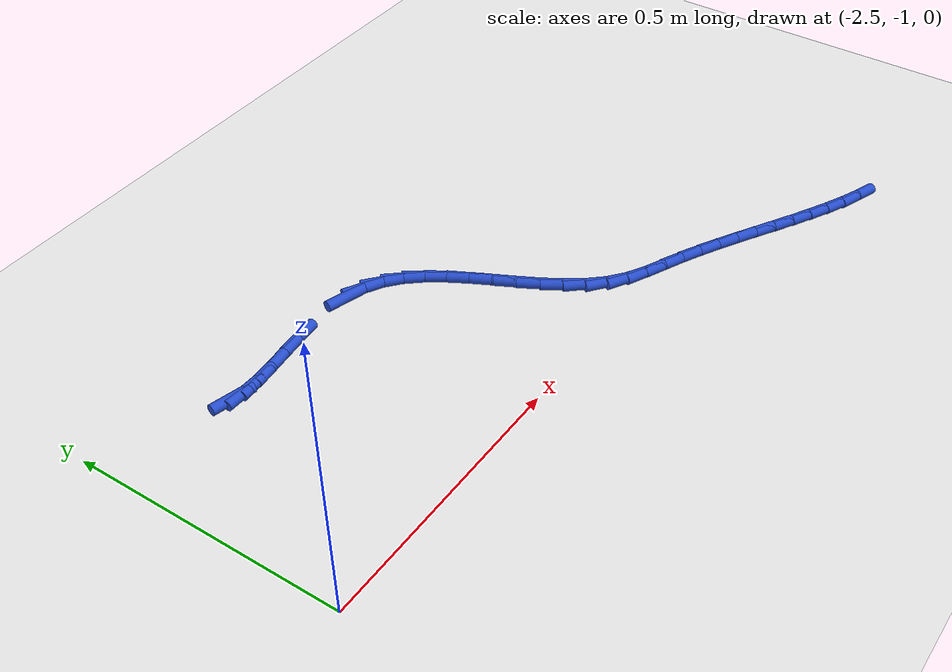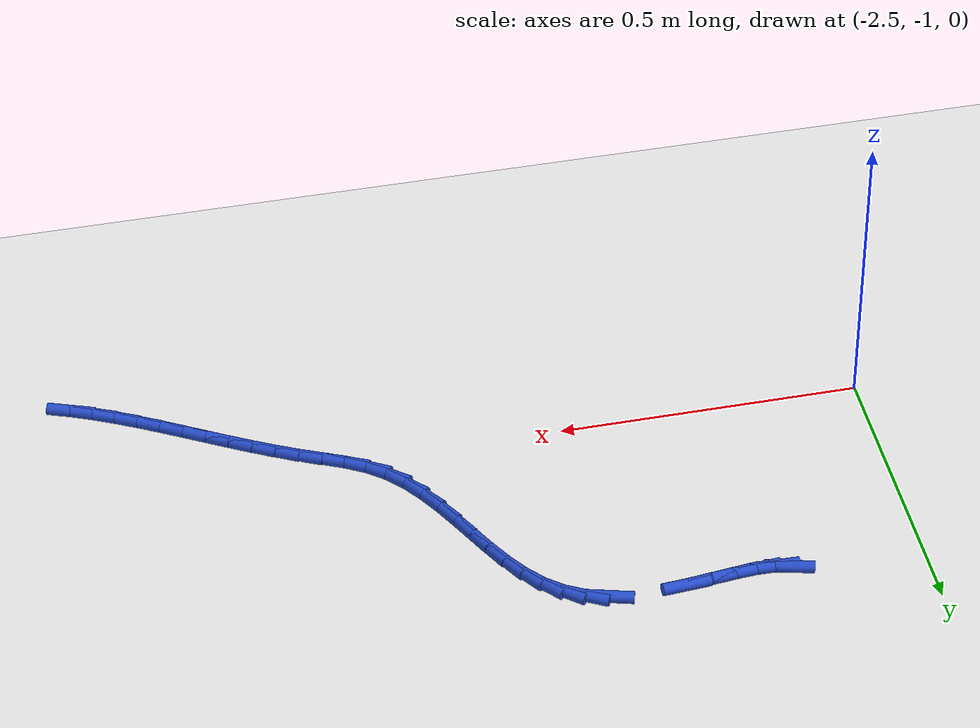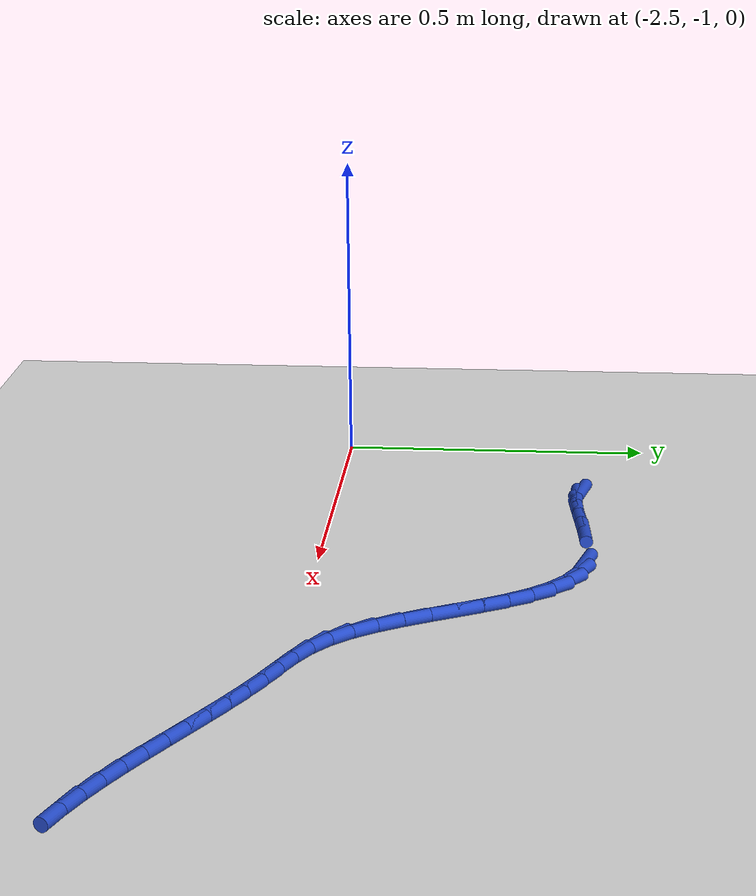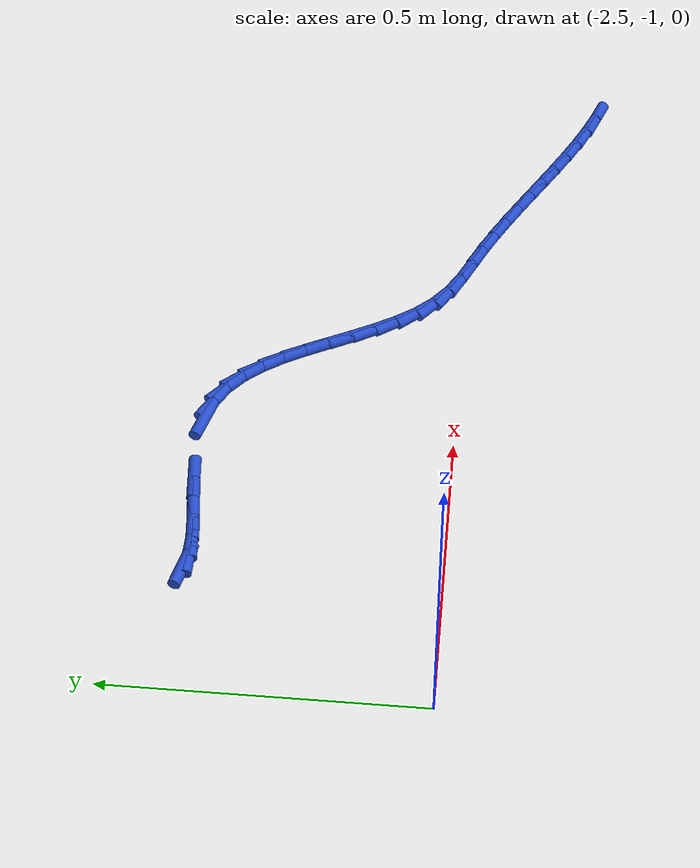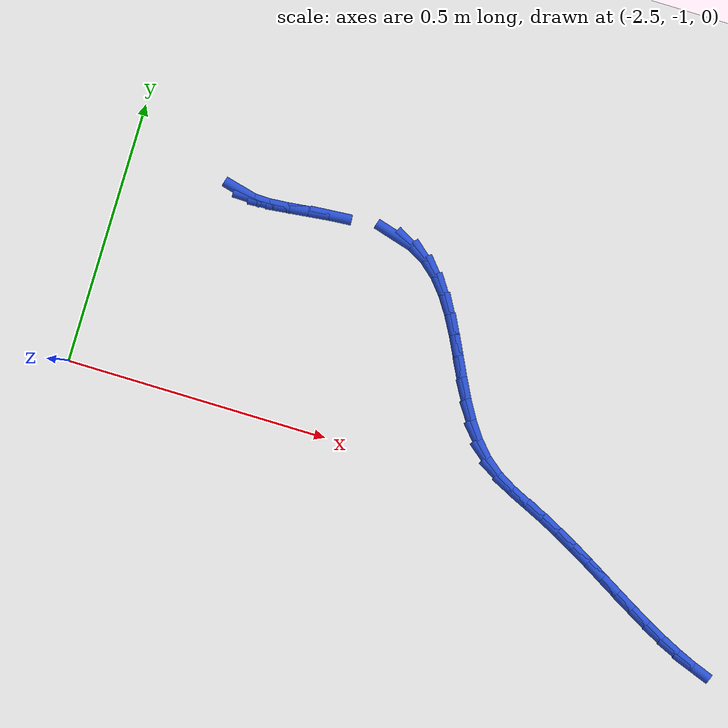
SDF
<sdf version="1.6">
 <world name="default">
  <model name="ground_plane">
   <static>1</static>
   <link name="link">
    <collision name="collision">
     <geometry><plane><normal>0 0 1</normal><size>100 100</size></plane></geometry>
     <surface><friction><ode><mu>100</mu><mu2>50</mu2></ode></friction></surface>
    </collision>
    <visual name="visual">
     <cast_shadows>0</cast_shadows>
     <geometry><plane><normal>0 0 1</normal><size>100 100</size></plane></geometry>
     <material>
      <script><uri>file://media/materials/scripts/gazebo.material</uri><name>Gazebo/WhiteGlow</name></script>
     </material>
    </visual>
   </link>
  </model>
  <model name="line">
   <link name="link_115">
    <pose>-2.2787938183123218 -0.6044094649087215 0.01 0 1.57 -0.24338673568815922</pose>
    <collision name="collision">
     <geometry><cylinder><radius>0.01</radius><length>0.08</length></cylinder></geometry>
    </collision>
    <visual name="visual">
     <material>
      <script><name>Gazebo/Blue</name><uri>file://media/materials/scripts/gazebo.material</uri></script>
     </material>
     <geometry><cylinder><radius>0.01</radius><length>0.08</length></cylinder></geometry>
    </visual>
   </link>
   <link name="link_116">
    <pose>-2.2562826425528004 -0.6099991980456921 0.01 0 1.57 -0.02326259080768685</pose>
    <collision name="collision">
     <geometry><cylinder><radius>0.01</radius><length>0.08</length></cylinder></geometry>
    </collision>
    <visual name="visual">
     <material>
      <script><name>Gazebo/Blue</name><uri>file://media/materials/scripts/gazebo.material</uri></script>
     </material>
     <geometry><cylinder><radius>0.01</radius><length>0.08</length></cylinder></geometry>
    </visual>
   </link>
   <link name="link_117">
    <pose>-2.226584211850876 -0.610690185133362 0.01 0 1.57 0.07625760759769655</pose>
    <collision name="collision">
     <geometry><cylinder><radius>0.01</radius><length>0.08</length></cylinder></geometry>
    </collision>
    <visual name="visual">
     <material>
      <script><name>Gazebo/Blue</name><uri>file://media/materials/scripts/gazebo.material</uri></script>
     </material>
     <geometry><cylinder><radius>0.01</radius><length>0.08</length></cylinder></geometry>
    </visual>
   </link>
   <link name="link_118">
    <pose>-2.1911887494341515 -0.6079857675526769 0.01 0 1.57 0.11358953289886145</pose>
    <collision name="collision">
     <geometry><cylinder><radius>0.01</radius><length>0.08</length></cylinder></geometry>
    </collision>
    <visual name="visual">
     <material>
      <script><name>Gazebo/Blue</name><uri>file://media/materials/scripts/gazebo.material</uri></script>
     </material>
     <geometry><cylinder><radius>0.01</radius><length>0.08</length></cylinder></geometry>
    </visual>
   </link>
   <link name="link_119">
    <pose>-2.1516911425369134 -0.6034798568504749 0.01 0 1.57 0.1117455510819127</pose>
    <collision name="collision">
     <geometry><cylinder><radius>0.01</radius><length>0.08</length></cylinder></geometry>
    </collision>
    <visual name="visual">
     <material>
      <script><name>Gazebo/Blue</name><uri>file://media/materials/scripts/gazebo.material</uri></script>
     </material>
     <geometry><cylinder><radius>0.01</radius><length>0.08</length></cylinder></geometry>
    </visual>
   </link>
   <link name="link_120">
    <pose>-2.1096862783934482 -0.5987663645735953 0.01 0 1.57 0.07737033232801367</pose>
    <collision name="collision">
     <geometry><cylinder><radius>0.01</radius><length>0.08</length></cylinder></geometry>
    </collision>
    <visual name="visual">
     <material>
      <script><name>Gazebo/Blue</name><uri>file://media/materials/scripts/gazebo.material</uri></script>
     </material>
     <geometry><cylinder><radius>0.01</radius><length>0.08</length></cylinder></geometry>
    </visual>
   </link>
   <link name="link_123">
    <pose>-1.9845770148285553 -0.5993195137632737 0.01 0 1.57 -0.28025862696537496</pose>
    <collision name="collision">
     <geometry><cylinder><radius>0.01</radius><length>0.08</length></cylinder></geometry>
    </collision>
    <visual name="visual">
     <material>
      <script><name>Gazebo/Blue</name><uri>file://media/materials/scripts/gazebo.material</uri></script>
     </material>
     <geometry><cylinder><radius>0.01</radius><length>0.08</length></cylinder></geometry>
    </visual>
   </link>
   <link name="link_124">
    <pose>-1.948485804827305 -0.6097078040506444 0.01 0 1.57 -0.5035521953981859</pose>
    <collision name="collision">
     <geometry><cylinder><radius>0.01</radius><length>0.08</length></cylinder></geometry>
    </collision>
    <visual name="visual">
     <material>
      <script><name>Gazebo/Blue</name><uri>file://media/materials/scripts/gazebo.material</uri></script>
     </material>
     <geometry><cylinder><radius>0.01</radius><length>0.08</length></cylinder></geometry>
    </visual>
   </link>
   <link name="link_125">
    <pose>-1.9171019605314763 -0.6269979112060378 0.01 0 1.57 -0.7065559334098402</pose>
    <collision name="collision">
     <geometry><cylinder><radius>0.01</radius><length>0.08</length></cylinder></geometry>
    </collision>
    <visual name="visual">
     <material>
      <script><name>Gazebo/Blue</name><uri>file://media/materials/scripts/gazebo.material</uri></script>
     </material>
     <geometry><cylinder><radius>0.01</radius><length>0.08</length></cylinder></geometry>
    </visual>
   </link>
   <link name="link_126">
    <pose>-1.8898159003946329 -0.6502881409416359 0.01 0 1.57 -0.8664180243405761</pose>
    <collision name="collision">
     <geometry><cylinder><radius>0.01</radius><length>0.08</length></cylinder></geometry>
    </collision>
    <visual name="visual">
     <material>
      <script><name>Gazebo/Blue</name><uri>file://media/materials/scripts/gazebo.material</uri></script>
     </material>
     <geometry><cylinder><radius>0.01</radius><length>0.08</length></cylinder></geometry>
    </visual>
   </link>
   <link name="link_127">
    <pose>-1.8658514595385454 -0.6784882155165839 0.01 0 1.57 -0.9812265476023809</pose>
    <collision name="collision">
     <geometry><cylinder><radius>0.01</radius><length>0.08</length></cylinder></geometry>
    </collision>
    <visual name="visual">
     <material>
      <script><name>Gazebo/Blue</name><uri>file://media/materials/scripts/gazebo.material</uri></script>
     </material>
     <geometry><cylinder><radius>0.01</radius><length>0.08</length></cylinder></geometry>
    </visual>
   </link>
   <link name="link_128">
    <pose>-1.8444324730849844 -0.7105078571900265 0.01 0 1.57 -1.0561488142827853</pose>
    <collision name="collision">
     <geometry><cylinder><radius>0.01</radius><length>0.08</length></cylinder></geometry>
    </collision>
    <visual name="visual">
     <material>
      <script><name>Gazebo/Blue</name><uri>file://media/materials/scripts/gazebo.material</uri></script>
     </material>
     <geometry><cylinder><radius>0.01</radius><length>0.08</length></cylinder></geometry>
    </visual>
   </link>
   <link name="link_129">
    <pose>-1.8247827761557207 -0.7452567882211086 0.01 0 1.57 -1.0970300972653164</pose>
    <collision name="collision">
     <geometry><cylinder><radius>0.01</radius><length>0.08</length></cylinder></geometry>
    </collision>
    <visual name="visual">
     <material>
      <script><name>Gazebo/Blue</name><uri>file://media/materials/scripts/gazebo.material</uri></script>
     </material>
     <geometry><cylinder><radius>0.01</radius><length>0.08</length></cylinder></geometry>
    </visual>
   </link>
   <link name="link_130">
    <pose>-1.8061262038725243 -0.7816447308689751 0.01 0 1.57 -1.107771073335499</pose>
    <collision name="collision">
     <geometry><cylinder><radius>0.01</radius><length>0.08</length></cylinder></geometry>
    </collision>
    <visual name="visual">
     <material>
      <script><name>Gazebo/Blue</name><uri>file://media/materials/scripts/gazebo.material</uri></script>
     </material>
     <geometry><cylinder><radius>0.01</radius><length>0.08</length></cylinder></geometry>
    </visual>
   </link>
   <link name="link_131">
    <pose>-1.7876865913571662 -0.8185814073927707 0.01 0 1.57 -1.0896919597943435</pose>
    <collision name="collision">
     <geometry><cylinder><radius>0.01</radius><length>0.08</length></cylinder></geometry>
    </collision>
    <visual name="visual">
     <material>
      <script><name>Gazebo/Blue</name><uri>file://media/materials/scripts/gazebo.material</uri></script>
     </material>
     <geometry><cylinder><radius>0.01</radius><length>0.08</length></cylinder></geometry>
    </visual>
   </link>
   <link name="link_132">
    <pose>-1.7686877737314168 -0.8549765400516406 0.01 0 1.57 -1.041529608802445</pose>
    <collision name="collision">
     <geometry><cylinder><radius>0.01</radius><length>0.08</length></cylinder></geometry>
    </collision>
    <visual name="visual">
     <material>
      <script><name>Gazebo/Blue</name><uri>file://media/materials/scripts/gazebo.material</uri></script>
     </material>
     <geometry><cylinder><radius>0.01</radius><length>0.08</length></cylinder></geometry>
    </visual>
   </link>
   <link name="link_133">
    <pose>-1.7483535861170474 -0.8897398511047293 0.01 0 1.57 -0.9597169980272375</pose>
    <collision name="collision">
     <geometry><cylinder><radius>0.01</radius><length>0.08</length></cylinder></geometry>
    </collision>
    <visual name="visual">
     <material>
      <script><name>Gazebo/Blue</name><uri>file://media/materials/scripts/gazebo.material</uri></script>
     </material>
     <geometry><cylinder><radius>0.01</radius><length>0.08</length></cylinder></geometry>
    </visual>
   </link>
   <link name="link_134">
    <pose>-1.7259078636358274 -0.9217810628111819 0.01 0 1.57 -0.839402554120749</pose>
    <collision name="collision">
     <geometry><cylinder><radius>0.01</radius><length>0.08</length></cylinder></geometry>
    </collision>
    <visual name="visual">
     <material>
      <script><name>Gazebo/Blue</name><uri>file://media/materials/scripts/gazebo.material</uri></script>
     </material>
     <geometry><cylinder><radius>0.01</radius><length>0.08</length></cylinder></geometry>
    </visual>
   </link>
   <link name="link_135">
    <pose>-1.7005744414095278 -0.9500098974301432 0.01 0 1.57 -0.6786189955492169</pose>
    <collision name="collision">
     <geometry><cylinder><radius>0.01</radius><length>0.08</length></cylinder></geometry>
    </collision>
    <visual name="visual">
     <material>
      <script><name>Gazebo/Blue</name><uri>file://media/materials/scripts/gazebo.material</uri></script>
     </material>
     <geometry><cylinder><radius>0.01</radius><length>0.08</length></cylinder></geometry>
    </visual>
   </link>
   <link name="link_136">
    <pose>-1.6716012569581518 -0.9733732890550753 0.01 0 1.57 -0.525690858157957</pose>
    <collision name="collision">
     <geometry><cylinder><radius>0.01</radius><length>0.08</length></cylinder></geometry>
    </collision>
    <visual name="visual">
     <material>
      <script><name>Gazebo/Blue</name><uri>file://media/materials/scripts/gazebo.material</uri></script>
     </material>
     <geometry><cylinder><radius>0.01</radius><length>0.08</length></cylinder></geometry>
    </visual>
   </link>
   <link name="link_137">
    <pose>-1.639136225539842 -0.9922076526998845 0.01 0 1.57 -0.44228177858984913</pose>
    <collision name="collision">
     <geometry><cylinder><radius>0.01</radius><length>0.08</length></cylinder></geometry>
    </collision>
    <visual name="visual">
     <material>
      <script><name>Gazebo/Blue</name><uri>file://media/materials/scripts/gazebo.material</uri></script>
     </material>
     <geometry><cylinder><radius>0.01</radius><length>0.08</length></cylinder></geometry>
    </visual>
   </link>
   <link name="link_138">
    <pose>-1.6044753978976154 -1.0086220165029052 0.01 0 1.57 -0.42863067108895453</pose>
    <collision name="collision">
     <geometry><cylinder><radius>0.01</radius><length>0.08</length></cylinder></geometry>
    </collision>
    <visual name="visual">
     <material>
      <script><name>Gazebo/Blue</name><uri>file://media/materials/scripts/gazebo.material</uri></script>
     </material>
     <geometry><cylinder><radius>0.01</radius><length>0.08</length></cylinder></geometry>
    </visual>
   </link>
   <link name="link_139">
    <pose>-1.5689882373574837 -1.0248383968228583 0.01 0 1.57 -0.46113824671240056</pose>
    <collision name="collision">
     <geometry><cylinder><radius>0.01</radius><length>0.08</length></cylinder></geometry>
    </collision>
    <visual name="visual">
     <material>
      <script><name>Gazebo/Blue</name><uri>file://media/materials/scripts/gazebo.material</uri></script>
     </material>
     <geometry><cylinder><radius>0.01</radius><length>0.08</length></cylinder></geometry>
    </visual>
   </link>
   <link name="link_140">
    <pose>-1.5336666012121882 -1.0423885600226928 0.01 0 1.57 -0.49116000534557536</pose>
    <collision name="collision">
     <geometry><cylinder><radius>0.01</radius><length>0.08</length></cylinder></geometry>
    </collision>
    <visual name="visual">
     <material>
      <script><name>Gazebo/Blue</name><uri>file://media/materials/scripts/gazebo.material</uri></script>
     </material>
     <geometry><cylinder><radius>0.01</radius><length>0.08</length></cylinder></geometry>
    </visual>
   </link>
   <link name="link_141">
    <pose>-1.498595825564598 -1.0611471849393403 0.01 0 1.57 -0.5120639940613108</pose>
    <collision name="collision">
     <geometry><cylinder><radius>0.01</radius><length>0.08</length></cylinder></geometry>
    </collision>
    <visual name="visual">
     <material>
      <script><name>Gazebo/Blue</name><uri>file://media/materials/scripts/gazebo.material</uri></script>
     </material>
     <geometry><cylinder><radius>0.01</radius><length>0.08</length></cylinder></geometry>
    </visual>
   </link>
   <link name="link_142">
    <pose>-1.4637280083358062 -1.0807453958944382 0.01 0 1.57 -0.5241927222710426</pose>
    <collision name="collision">
     <geometry><cylinder><radius>0.01</radius><length>0.08</length></cylinder></geometry>
    </collision>
    <visual name="visual">
     <material>
      <script><name>Gazebo/Blue</name><uri>file://media/materials/scripts/gazebo.material</uri></script>
     </material>
     <geometry><cylinder><radius>0.01</radius><length>0.08</length></cylinder></geometry>
    </visual>
   </link>
   <link name="link_143">
    <pose>-1.4290152474469096 -1.1008143172096225 0.01 0 1.57 -0.5277326924219219</pose>
    <collision name="collision">
     <geometry><cylinder><radius>0.01</radius><length>0.08</length></cylinder></geometry>
    </collision>
    <visual name="visual">
     <material>
      <script><name>Gazebo/Blue</name><uri>file://media/materials/scripts/gazebo.material</uri></script>
     </material>
     <geometry><cylinder><radius>0.01</radius><length>0.08</length></cylinder></geometry>
    </visual>
   </link>
   <link name="link_144">
    <pose>-1.394409640819003 -1.1209850732065294 0.01 0 1.57 -0.5226944740322478</pose>
    <collision name="collision">
     <geometry><cylinder><radius>0.01</radius><length>0.08</length></cylinder></geometry>
    </collision>
    <visual name="visual">
     <material>
      <script><name>Gazebo/Blue</name><uri>file://media/materials/scripts/gazebo.material</uri></script>
     </material>
     <geometry><cylinder><radius>0.01</radius><length>0.08</length></cylinder></geometry>
    </visual>
   </link>
   <link name="link_145">
    <pose>-1.359863286373182 -1.1408887882067957 0.01 0 1.57 -0.5089041169118508</pose>
    <collision name="collision">
     <geometry><cylinder><radius>0.01</radius><length>0.08</length></cylinder></geometry>
    </collision>
    <visual name="visual">
     <material>
      <script><name>Gazebo/Blue</name><uri>file://media/materials/scripts/gazebo.material</uri></script>
     </material>
     <geometry><cylinder><radius>0.01</radius><length>0.08</length></cylinder></geometry>
    </visual>
   </link>
   <link name="link_146">
    <pose>-1.3253282820305416 -1.1601565865320578 0.01 0 1.57 -0.4860045104757785</pose>
    <collision name="collision">
     <geometry><cylinder><radius>0.01</radius><length>0.08</length></cylinder></geometry>
    </collision>
    <visual name="visual">
     <material>
      <script><name>Gazebo/Blue</name><uri>file://media/materials/scripts/gazebo.material</uri></script>
     </material>
     <geometry><cylinder><radius>0.01</radius><length>0.08</length></cylinder></geometry>
    </visual>
   </link>
   <link name="link_147">
    <pose>-1.2907567257121775 -1.1784195925039527 0.01 0 1.57 -0.4534702264786243</pose>
    <collision name="collision">
     <geometry><cylinder><radius>0.01</radius><length>0.08</length></cylinder></geometry>
    </collision>
    <visual name="visual">
     <material>
      <script><name>Gazebo/Blue</name><uri>file://media/materials/scripts/gazebo.material</uri></script>
     </material>
     <geometry><cylinder><radius>0.01</radius><length>0.08</length></cylinder></geometry>
    </visual>
   </link>
   <link name="link_148">
    <pose>-1.256100715339184 -1.195308930444116 0.01 0 1.57 -0.4106449971091416</pose>
    <collision name="collision">
     <geometry><cylinder><radius>0.01</radius><length>0.08</length></cylinder></geometry>
    </collision>
    <visual name="visual">
     <material>
      <script><name>Gazebo/Blue</name><uri>file://media/materials/scripts/gazebo.material</uri></script>
     </material>
     <geometry><cylinder><radius>0.01</radius><length>0.08</length></cylinder></geometry>
    </visual>
   </link>
   <link name="link_149">
    <pose>-1.221312348832658 -1.2104557246741847 0.01 0 1.57 -0.3568171980250918</pose>
    <collision name="collision">
     <geometry><cylinder><radius>0.01</radius><length>0.08</length></cylinder></geometry>
    </collision>
    <visual name="visual">
     <material>
      <script><name>Gazebo/Blue</name><uri>file://media/materials/scripts/gazebo.material</uri></script>
     </material>
     <geometry><cylinder><radius>0.01</radius><length>0.08</length></cylinder></geometry>
    </visual>
   </link>
  </model>
 </world>
</sdf>
